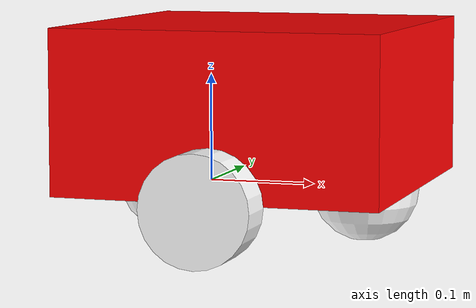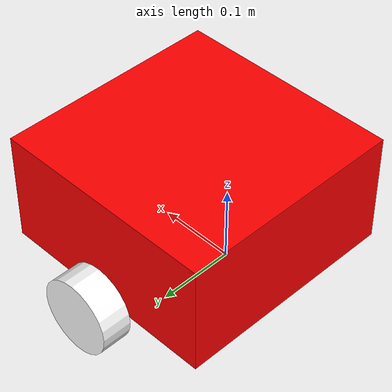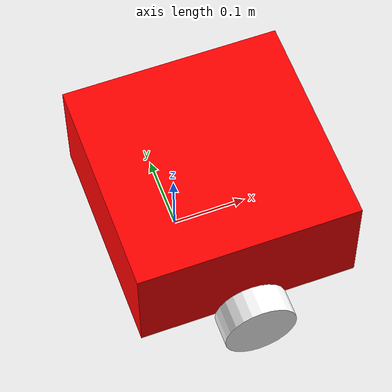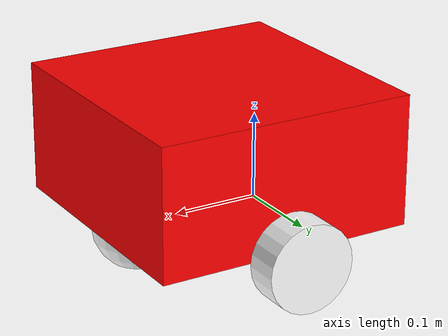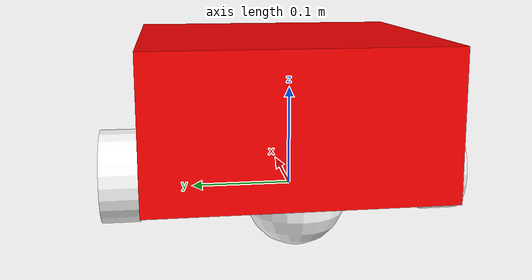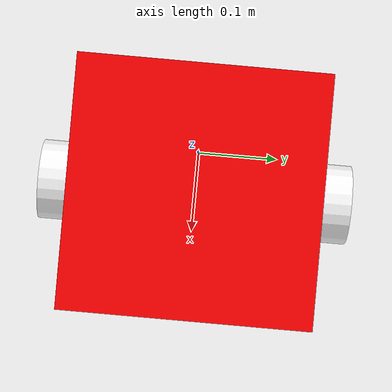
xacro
<?xml version="1.0"?>
<robot  xmlns:xacro="http://ros.org/wiki/xacro">

<xacro:include filename="inartial_macros.xacro"/>

<material name="white">
    <color rgba="1 1 1 1" />
</material>

<material name="red">
    <color rgba="1 0 0 1" />
</material>

<material name="black">
    <color rgba="0 0 0 1" />
</material>

<!-- BASE_LINK -->
<link name="base_link">
</link>

<!-- BASE FOOTPRINT LINK -->

<joint name="base_foortprint_joint" type="fixed" >
    <parent link="base_link"/>
    <child link="base_footprint"/>
    <origin xyz="0 0 0" rpy="0 0 0"/>
</joint>

<link name="base_footprint">
</link>

 <!-- MAIN_CORE_LINK -->
<joint name="base_joint" type="fixed">
    <parent link="base_link" />
    <child  link="core" />
    <origin xyz="-0.1 0 0"/>
</joint>

<link name="core">
    <visual>
        <geometry>
            <box size="0.3 0.3 0.15" />
        </geometry>
        <material name="red" />
        <origin xyz="0.15 0 0.075" />
    </visual>

    <collision>
        <geometry>
            <box size="0.3 0.3 0.15" />
        </geometry>
        <origin xyz="0.15 0 0.075" />
    </collision>
    <xacro:inertial_box mass="0.5" x="0.3" y="0.3" z="0.15">
            <origin xyz="0.15 0 0.075" rpy="0 0 0"/>
    </xacro:inertial_box>
</link>

<!-- FIXING UP THE COLORS IN GAZEBO -->

<gazebo reference="core">
    <material> Gazebo/Red </material>
</gazebo>

<!-- LEFT_WHEEL_LINK -->
<joint name="left_wheel_joint" type="continuous">
    <parent link="base_link"/>
    <child link="left_wheel"/>
    <origin xyz="0.05 0.175 0" rpy="-${pi/2} 0 0" />
    <axis xyz="0 0 1" />
</joint>

<link name="left_wheel">
    <visual>
    <geometry>
        <cylinder radius="0.05" length="0.04"/>

    </geometry>
    <material name="white"/>

    </visual>

    <collision>
        <geometry>
        <cylinder radius="0.05" length="0.04"/>

    </geometry>
    </collision>
    <xacro:inertial_cylinder mass="0.1" length="0.4" radius="0.05">
        <origin xyz="0 0 0" rpy="0 0 0"/>
    </xacro:inertial_cylinder>
</link>

<gazebo reference="left_wheel">
    <material> Gazebo/White </material>
</gazebo>

<!-- RIGHT_WHEEL_LINK -->

<joint name="right_wheel_joint" type="continuous">
    <parent link="base_link"/>
    <child link="right_wheel"/>
    <origin xyz="0.05 -0.175 0" rpy="${pi/2} 0 0" />
    <axis xyz="0 0 -1" />
</joint>

<link name="right_wheel">
    <visual>
    <geometry>
        <cylinder radius="0.05" length="0.04"/>

    </geometry>
    <material name="white"/>

    </visual>

    <collision>
        <geometry>
            <cylinder radius="0.05" length="0.04"/>

        </geometry>
    </collision>

    <xacro:inertial_cylinder mass="0.1" length="0.4" radius="0.05">
        <origin xyz="0 0 0" rpy="0 0 0"/>
    </xacro:inertial_cylinder>

</link>

<gazebo reference="right_wheel">
    <material> Gazebo/White </material>
</gazebo>

<!-- CASTER_WHEEL_LINK  -->

<joint name="caster_wheel_joint" type="fixed">
    <parent link="core"/>
    <child link="caster_wheel_link" />
    <origin xyz="0.25 0 0" />

</joint>

<link name="caster_wheel_link">
    <visual>
        <geometry>
            <sphere radius="0.05" />
        </geometry>
        <origin xyz="0 0 0" />
        <material name="white"/>
    </visual>

    <collision>
        <geometry>
            <sphere radius="0.05" />
        </geometry>
        <origin xyz="0 0 0" />
    </collision>
    <xacro:inertial_sphere mass="0.1" radius="0.05">
        <origin xyz="0 0 0" rpy="0 0 0"/>
    </xacro:inertial_sphere>
</link>

<gazebo reference="caster_wheel_link">
    <material> Gazebo/White </material>
    <mu1 value="0.0015"/>
    <mu2 value="0.0015"/>
</gazebo>

<!-- CASTER WHELL 2 -->

<joint name="caster_wheel_joint2" type="fixed">
    <parent link="core"/>
    <child link="caster_wheel_link2" />
    <origin xyz="0.06 0 0" />

</joint>

<link name="caster_wheel_link2">
    <visual>
        <geometry>
            <sphere radius="0.05" />
        </geometry>
        <origin xyz="0 0 0" />
        <material name="white"/>
    </visual>

    <collision>
        <geometry>
            <sphere radius="0.05" />
        </geometry>
        <origin xyz="0 0 0" />
    </collision>
    <xacro:inertial_sphere mass="0.1" radius="0.05">
        <origin xyz="0 0 0" rpy="0 0 0"/>
    </xacro:inertial_sphere>
</link>

<gazebo reference="caster_wheel_link2">
    <material> Gazebo/White </material>
    <mu1 value="0.0015"/>
    <mu2 value="0.0015"/>
</gazebo>

</robot>
